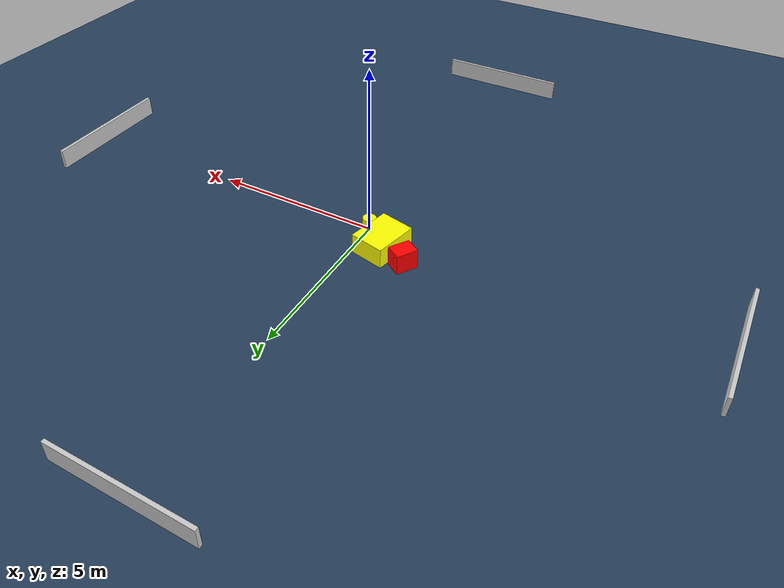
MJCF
<?xml version="1.0" ?>
<mujoco model="generated_environment">
  <option timestep="0.01" integrator="RK4" cone="elliptic"/>
  <default>
    <geom density="1"/>
  </default>
  <asset>
    <texture builtin="gradient" height="3072" name="skybox" rgb1="0.3 0.5 0.7" rgb2="0 0 0" type="skybox" width="512"/>
    <texture builtin="checker" height="300" name="groundplane" rgb1="0.2 0.3 0.4" rgb2="0.1 0.2 0.3" type="2d" width="300"/>
    <material name="groundplane" reflectance="0.2" texrepeat="5 5" texture="groundplane"/>
  </asset>
  <worldbody>
    <light dir="0 0 -1" directional="true" pos="0 0 1.5"/>
    <geom condim="3" friction="0.5 0.005 0.001" material="groundplane" name="floor" pos="0 0 0" size="0 0 0.05" type="plane"/>
    <body name="walls">
      <geom name="wall_1" condim="4" pos="-10.0 0.0 0.3" rgba="0.800000011920929 0.800000011920929 0.800000011920929 1.0" size="0.05 2.0 0.3" type="box"/>
      <geom name="wall_2" condim="4" pos="10.0 0.0 0.3" rgba="0.800000011920929 0.800000011920929 0.800000011920929 1.0" size="0.05 2.0 0.3" type="box"/>
      <geom name="wall_3" condim="4" pos="0.0 -10.0 0.3" rgba="0.800000011920929 0.800000011920929 0.800000011920929 1.0" size="2.0 0.05 0.3" type="box"/>
      <geom name="wall_4" condim="4" pos="0.0 10.0 0.3" rgba="0.800000011920929 0.800000011920929 0.800000011920929 1.0" size="2.0 0.05 0.3" type="box"/>
    </body>
    <body name="robot">
      <joint name="joint_x" type="slide" pos="0 0 0" axis="1 0 0"/>
      <joint name="joint_y" type="slide" pos="0 0 0" axis="0 1 0"/>
      <geom name="robot" type="cylinder" pos="0.0 0.0 0.2" size="0.2 0.2 0.0" mass="5.0" friction="1.0 0.005 0.0001" condim="4" rgba="1.0 1.0 0.0 1.0"/>
    </body>
    <body name="obstacle_1_movable">
      <geom name="obstacle_1_movable" condim="4" pos="-0.7309426099505822 0.601727993430027 0.3" euler="0 0 77.43919880698009" friction="0.0 0.005 0.001" rgba="1.0 1.0 0.0 1.0" size="0.6569585747930926 0.5101090321418353 0.3" type="box" mass="0.1"/>
      <joint type="free"/>
    </body>
    <body name="obstacle_2_static">
      <geom name="obstacle_2_static" condim="4" pos="-1.5673990104282813 0.9772480325889527 0.3" euler="0 0 146.91963680494948" friction="0.0 0.005 0.001" rgba="1.0 0.0 0.0 1.0" size="0.2438700847854338 0.31546917536492247 0.3" type="box"/>
    </body>
  </worldbody>
  <actuator>
    <motor name="actuator_x" joint="joint_x" gear="1" ctrlrange="-1 1"/>
    <motor name="actuator_y" joint="joint_y" gear="1" ctrlrange="-1 1"/>
  </actuator>
</mujoco>
